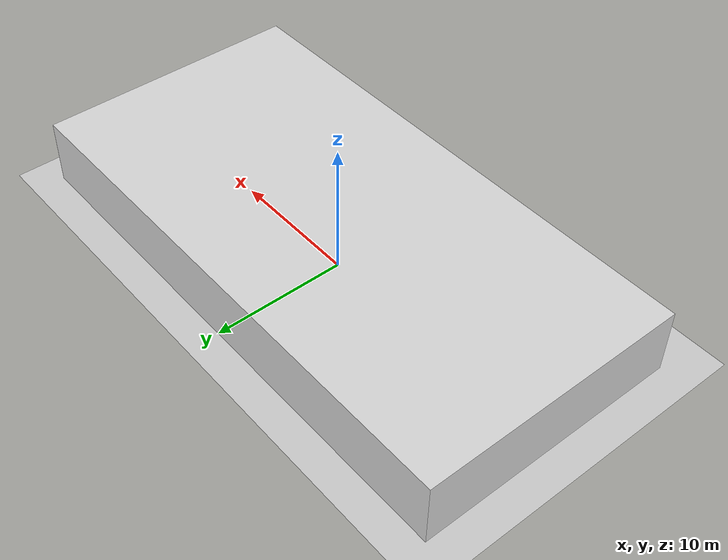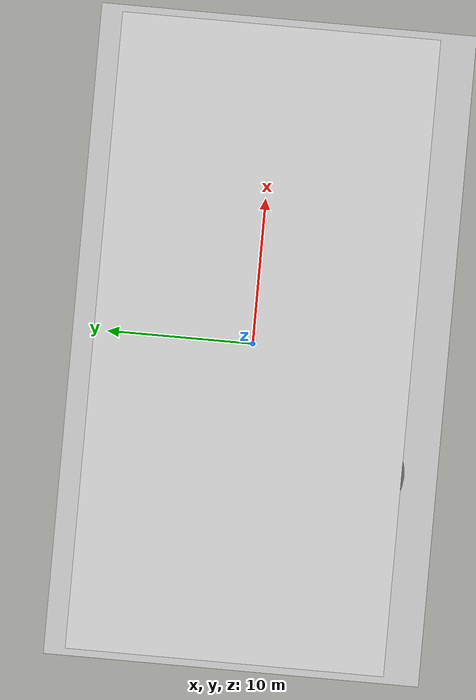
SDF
<?xml version="1.0" ?>
<sdf version="1.6">
  <world name="airport">
    <include>
      <uri>model://sun</uri>
    </include>
    <include>
      <uri>model://ground_plane</uri>
    </include>

    <!-- Terminal building -->
    <model name="terminal">
      <static>true</static>
      <pose>0 0 2.5 0 0 0</pose>
      <link name="link">
        <collision name="collision">
          <geometry>
            <box>
              <size>40 20 5</size>
            </box>
          </geometry>
        </collision>
        <visual name="visual">
          <geometry>
            <box>
              <size>40 20 5</size>
            </box>
          </geometry>
          <material>
            <ambient>0.85 0.85 0.85 1</ambient>
          </material>
        </visual>
      </link>
    </model>

    <!-- Check-in counters -->
    <model name="counter1">
      <static>true</static>
      <pose>-10 5 0.5 0 0 0</pose>
      <link name="link">
        <collision name="collision">
          <geometry>
            <box>
              <size>8 1.5 1</size>
            </box>
          </geometry>
        </collision>
        <visual name="visual">
          <geometry>
            <box>
              <size>8 1.5 1</size>
            </box>
          </geometry>
          <material>
            <ambient>0.7 0.7 0.9 1</ambient>
          </material>
        </visual>
      </link>
    </model>

    <model name="counter2">
      <static>true</static>
      <pose>10 5 0.5 0 0 0</pose>
      <link name="link">
        <collision name="collision">
          <geometry>
            <box>
              <size>8 1.5 1</size>
            </box>
          </geometry>
        </collision>
        <visual name="visual">
          <geometry>
            <box>
              <size>8 1.5 1</size>
            </box>
          </geometry>
          <material>
            <ambient>0.7 0.7 0.9 1</ambient>
          </material>
        </visual>
      </link>
    </model>

    <!-- Seating areas -->
    <model name="seat_row1">
      <static>true</static>
      <pose>-5 -5 0.25 0 0 0</pose>
      <link name="link">
        <collision name="collision">
          <geometry>
            <box>
              <size>6 0.8 0.5</size>
            </box>
          </geometry>
        </collision>
        <visual name="visual">
          <geometry>
            <box>
              <size>6 0.8 0.5</size>
            </box>
          </geometry>
          <material>
            <ambient>0.3 0.3 0.6 1</ambient>
          </material>
        </visual>
      </link>
    </model>

    <model name="seat_row2">
      <static>true</static>
      <pose>5 -5 0.25 0 0 0</pose>
      <link name="link">
        <collision name="collision">
          <geometry>
            <box>
              <size>6 0.8 0.5</size>
            </box>
          </geometry>
        </collision>
        <visual name="visual">
          <geometry>
            <box>
              <size>6 0.8 0.5</size>
            </box>
          </geometry>
          <material>
            <ambient>0.3 0.3 0.6 1</ambient>
          </material>
        </visual>
      </link>
    </model>

    <!-- Luggage carousels -->
    <model name="carousel1">
      <static>true</static>
      <pose>-8 -8 0.4 0 0 0</pose>
      <link name="link">
        <collision name="collision">
          <geometry>
            <cylinder>
              <radius>3</radius>
              <length>0.8</length>
            </cylinder>
          </geometry>
        </collision>
        <visual name="visual">
          <geometry>
            <cylinder>
              <radius>3</radius>
              <length>0.8</length>
            </cylinder>
          </geometry>
          <material>
            <ambient>0.4 0.4 0.4 1</ambient>
          </material>
        </visual>
      </link>
    </model>

    <!-- Information kiosks -->
    <model name="info_kiosk">
      <static>true</static>
      <pose>0 2 0.8 0 0 0</pose>
      <link name="link">
        <collision name="collision">
          <geometry>
            <cylinder>
              <radius>0.5</radius>
              <length>1.6</length>
            </cylinder>
          </geometry>
        </collision>
        <visual name="visual">
          <geometry>
            <cylinder>
              <radius>0.5</radius>
              <length>1.6</length>
            </cylinder>
          </geometry>
          <material>
            <ambient>0.2 0.4 0.8 1</ambient>
          </material>
        </visual>
      </link>
    </model>

  </world>
</sdf>
